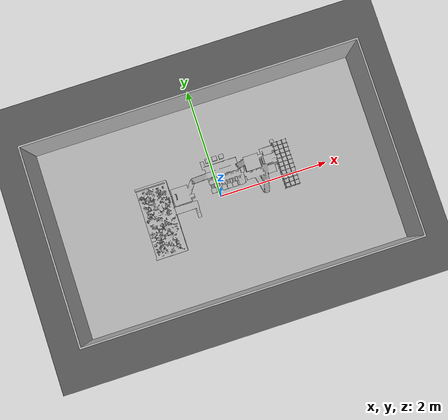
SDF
<?xml version='1.0' encoding='utf-8'?>
<sdf version="1.7">
  <world name="demo_facility">
    <plugin filename="ignition-gazebo-physics-system"
      name="ignition::gazebo::systems::Physics" />
    <plugin filename="ignition-gazebo-user-commands-system"
      name="ignition::gazebo::systems::UserCommands" />
    <plugin filename="ignition-gazebo-scene-broadcaster-system"
      name="ignition::gazebo::systems::SceneBroadcaster" />
    <plugin filename="ignition-gazebo-sensors-system"
      name="ignition::gazebo::systems::Sensors">
      <render_engine>ogre2</render_engine>
    </plugin>
    <plugin filename="ignition-gazebo-imu-system"
      name="ignition::gazebo::systems::Imu" />

    <physics name="1ms" type="ode">
      <max_step_size>0.001</max_step_size>
      <real_time_factor>1.0</real_time_factor>
      <real_time_update_rate>1000</real_time_update_rate>
      <ode>
        <solver><type>quick</type><iters>50</iters><sor>1.3</sor></solver>
        <constraints>
          <cfm>0.0</cfm><erp>0.2</erp>
          <contact_max_correcting_vel>100.0</contact_max_correcting_vel>
          <contact_surface_layer>0.001</contact_surface_layer>
        </constraints>
      </ode>
    </physics>
    <scene>
      <ambient>0.6 0.6 0.6 1</ambient>
      <background>0.72 0.78 0.84 1</background>
      <shadows>true</shadows>
    </scene>

    <light type="directional" name="sun">
      <cast_shadows>true</cast_shadows>
      <pose>0 0 6 0 0 0</pose>
      <diffuse>0.9 0.9 0.9 1</diffuse>
      <specular>0.2 0.2 0.2 1</specular>
      <direction>-0.4 0.3 -0.9</direction>
    </light>
    <light type="point" name="hall_fill_west">
      <pose>-1.49 0 0.99 0 0 0</pose>
      <diffuse>0.6 0.6 0.6 1</diffuse>
      <attenuation><range>4.0</range><linear>0.05</linear>
        <quadratic>0.02</quadratic></attenuation>
    </light>
    <light type="point" name="hall_fill_east">
      <pose>1.49 0 0.99 0 0 0</pose>
      <diffuse>0.6 0.6 0.6 1</diffuse>
      <attenuation><range>4.0</range><linear>0.05</linear>
        <quadratic>0.02</quadratic></attenuation>
    </light>

    <model name="ground_plane">
      <static>true</static>
      <link name="link">
        <collision name="collision">
          <geometry><plane><normal>0 0 1</normal>
            <size>10.0 8.0</size></plane></geometry>
        </collision>
        <visual name="visual">
          <geometry><plane><normal>0 0 1</normal>
            <size>10.0 8.0</size></plane></geometry>
          <material><ambient>0.3 0.3 0.3 1</ambient>
            <diffuse>0.35 0.35 0.35 1</diffuse></material>
        </visual>
      </link>
    </model>

    <model name="hall_shell">
      <static>true</static>
      <pose>0.0000 0.0000 0 0 0 0.000000</pose>
      <link name="link">
        <visual name="visual">
          <geometry><mesh><uri>model://hall_shell/meshes/hall_shell.obj</uri>
            <scale>0.09901 0.09901 0.09901</scale></mesh></geometry>
        </visual>
        <collision name="collision">
          <geometry><mesh><uri>model://hall_shell/meshes/hall_shell.obj</uri>
            <scale>0.09901 0.09901 0.09901</scale></mesh></geometry>
        </collision>
      </link>
    </model>
    <model name="bunker">
      <static>true</static>
      <pose>0.0159 -0.0355 0 0 0 0.000000</pose>
      <link name="link">
        <visual name="visual">
          <geometry><mesh><uri>model://bunker/meshes/bunker.obj</uri>
            <scale>0.04950 0.04950 0.04950</scale></mesh></geometry>
        </visual>
        <collision name="collision">
          <geometry><mesh><uri>model://bunker/meshes/bunker.obj</uri>
            <scale>0.04950 0.04950 0.04950</scale></mesh></geometry>
        </collision>
      </link>
    </model>
    <model name="primary_shredder">
      <static>true</static>
      <pose>0.0159 -0.0355 0 0 0 0.000000</pose>
      <link name="link">
        <visual name="visual">
          <geometry><mesh><uri>model://primary_shredder/meshes/primary_shredder.obj</uri>
            <scale>0.04950 0.04950 0.04950</scale></mesh></geometry>
        </visual>
        <collision name="collision">
          <geometry><mesh><uri>model://primary_shredder/meshes/primary_shredder.obj</uri>
            <scale>0.04950 0.04950 0.04950</scale></mesh></geometry>
        </collision>
      </link>
    </model>
    <model name="sorting_line">
      <static>true</static>
      <pose>0.0159 -0.0355 0 0 0 0.000000</pose>
      <link name="link">
        <visual name="visual">
          <geometry><mesh><uri>model://sorting_line/meshes/sorting_line.obj</uri>
            <scale>0.04950 0.04950 0.04950</scale></mesh></geometry>
        </visual>
        <collision name="collision">
          <geometry><mesh><uri>model://sorting_line/meshes/sorting_line.obj</uri>
            <scale>0.04950 0.04950 0.04950</scale></mesh></geometry>
        </collision>
      </link>
    </model>
    <model name="secondary_processor">
      <static>true</static>
      <pose>0.0159 -0.0355 0 0 0 0.000000</pose>
      <link name="link">
        <visual name="visual">
          <geometry><mesh><uri>model://secondary_processor/meshes/secondary_processor.obj</uri>
            <scale>0.04950 0.04950 0.04950</scale></mesh></geometry>
        </visual>
        <collision name="collision">
          <geometry><mesh><uri>model://secondary_processor/meshes/secondary_processor.obj</uri>
            <scale>0.04950 0.04950 0.04950</scale></mesh></geometry>
        </collision>
      </link>
    </model>
    <model name="baler">
      <static>true</static>
      <pose>0.0159 -0.0355 0 0 0 0.000000</pose>
      <link name="link">
        <visual name="visual">
          <geometry><mesh><uri>model://baler/meshes/baler.obj</uri>
            <scale>0.04950 0.04950 0.04950</scale></mesh></geometry>
        </visual>
        <collision name="collision">
          <geometry><mesh><uri>model://baler/meshes/baler.obj</uri>
            <scale>0.04950 0.04950 0.04950</scale></mesh></geometry>
        </collision>
      </link>
    </model>
    <model name="bale_storage">
      <static>true</static>
      <pose>0.0159 -0.0355 0 0 0 0.000000</pose>
      <link name="link">
        <visual name="visual">
          <geometry><mesh><uri>model://bale_storage/meshes/bale_storage.obj</uri>
            <scale>0.04950 0.04950 0.04950</scale></mesh></geometry>
        </visual>
        <collision name="collision">
          <geometry><mesh><uri>model://bale_storage/meshes/bale_storage.obj</uri>
            <scale>0.04950 0.04950 0.04950</scale></mesh></geometry>
        </collision>
      </link>
    </model>
  </world>
</sdf>
